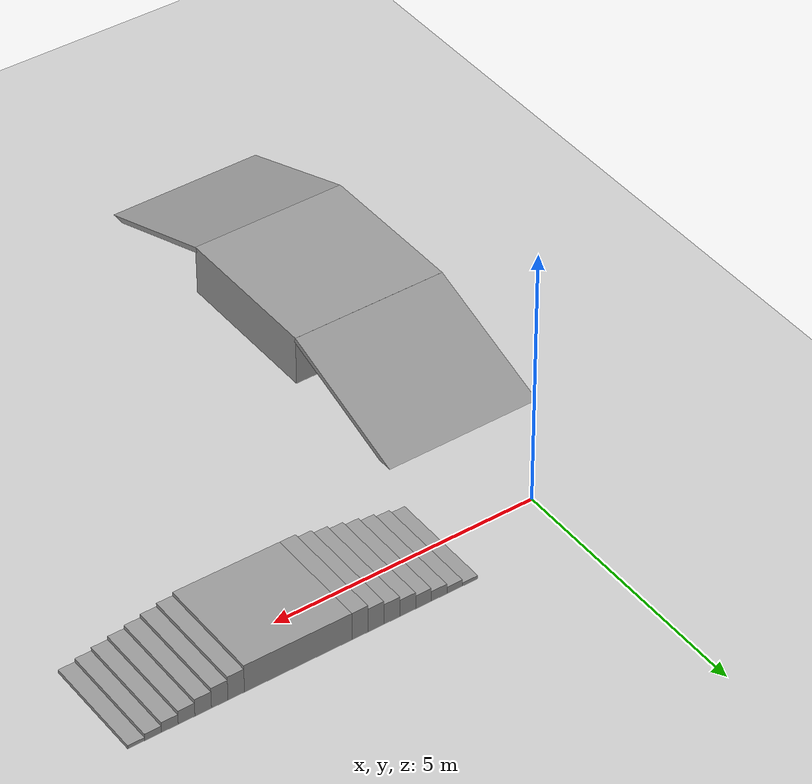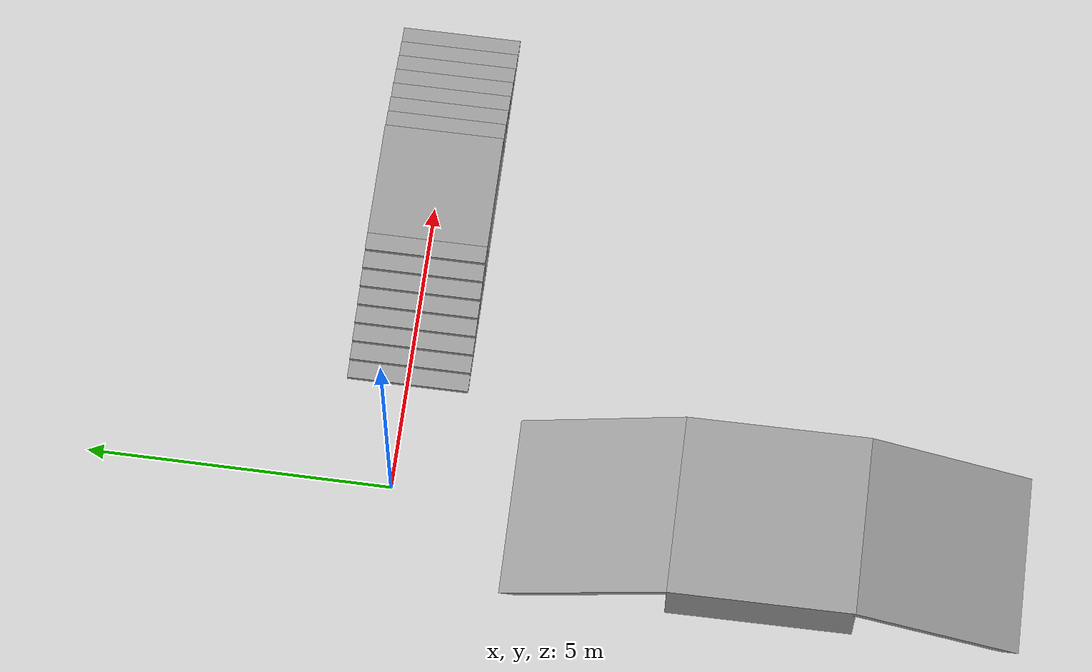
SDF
<sdf version="1.7">
 <world name="default">
  <model name="ground_plane">
   <static>1</static>
   <link name="link">
    <collision name="collision">
     <geometry><plane><normal>0 0 1</normal><size>100 100</size></plane></geometry>
     <surface><friction><ode><mu>100</mu><mu2>50</mu2></ode></friction></surface>
    </collision>
    <visual name="visual">
     <cast_shadows>0</cast_shadows>
     <geometry><plane><normal>0 0 1</normal><size>100 100</size></plane></geometry>
     <material>
      <script><uri>file://media/materials/scripts/gazebo.material</uri><name>Gazebo/Grey</name></script>
     </material>
    </visual>
   </link>
  </model>
  <model name="7cm">
   <link name="link_0">
    <inertial>
     <mass>1</mass>
     <inertia>
      <ixx>0.166667</ixx>
      <ixy>0</ixy>
      <ixz>0</ixz>
      <iyy>0.166667</iyy>
      <iyz>0</iyz>
      <izz>0.166667</izz>
     </inertia>
    </inertial>
    <pose>-3.04688 0 -0.1225 0 -0 0</pose>
    <kinematic>1</kinematic>
    <visual name="visual">
     <geometry><box><size>0.3 2 0.07</size></box></geometry>
     <material>
      <lighting>1</lighting>
      <script><uri>file://media/materials/scripts/gazebo.material</uri><name>Gazebo/Grey</name></script>
      <shader type="pixel"><normal_map>__default__</normal_map></shader>
      <ambient>0.3 0.3 0.3 1</ambient>
      <diffuse>0.7 0.7 0.7 1</diffuse>
      <specular>0.01 0.01 0.01 1</specular>
      <emissive>0 0 0 1</emissive>
     </material>
    </visual>
    <collision name="collision">
     <geometry><box><size>0.3 2 0.07</size></box></geometry>
     <surface>
      <friction>
       <ode><mu>1</mu><mu2>1</mu2><fdir1>0 0 0</fdir1><slip1>0</slip1><slip2>0</slip2></ode>
       <torsional>
        <coefficient>1</coefficient>
        <patch_radius>0</patch_radius>
        <surface_radius>0</surface_radius>
        <use_patch_radius>1</use_patch_radius>
        <ode><slip>0</slip></ode>
       </torsional>
      </friction>
      <bounce><restitution_coefficient>0</restitution_coefficient><threshold>1e+06</threshold></bounce>
      <contact>
       <collide_without_contact>0</collide_without_contact>
       <collide_without_contact_bitmask>1</collide_without_contact_bitmask>
       <collide_bitmask>1</collide_bitmask>
       <ode>
        <soft_cfm>0</soft_cfm>
        <soft_erp>0.2</soft_erp>
        <kp>1e+13</kp>
        <kd>1</kd>
        <max_vel>0.01</max_vel>
        <min_depth>0</min_depth>
       </ode>
       <bullet>
        <split_impulse>1</split_impulse>
        <split_impulse_penetration_threshold>-0.01</split_impulse_penetration_threshold>
        <soft_cfm>0</soft_cfm>
        <soft_erp>0.2</soft_erp>
        <kp>1e+13</kp>
        <kd>1</kd>
       </bullet>
      </contact>
     </surface>
    </collision>
   </link>
   <link name="link_0_clone">
    <inertial>
     <mass>1</mass>
     <inertia>
      <ixx>0.166667</ixx>
      <ixy>0</ixy>
      <ixz>0</ixz>
      <iyy>0.166667</iyy>
      <iyz>0</iyz>
      <izz>0.166667</izz>
     </inertia>
    </inertial>
    <pose>-2.74688 0 -0.0875 0 -0 0</pose>
    <kinematic>1</kinematic>
    <visual name="visual">
     <geometry><box><size>0.3 2 0.14</size></box></geometry>
     <material>
      <lighting>1</lighting>
      <script><uri>file://media/materials/scripts/gazebo.material</uri><name>Gazebo/Grey</name></script>
      <shader type="pixel"><normal_map>__default__</normal_map></shader>
      <ambient>0.3 0.3 0.3 1</ambient>
      <diffuse>0.7 0.7 0.7 1</diffuse>
      <specular>0.01 0.01 0.01 1</specular>
      <emissive>0 0 0 1</emissive>
     </material>
    </visual>
    <collision name="collision">
     <geometry><box><size>0.3 2 0.14</size></box></geometry>
     <surface>
      <friction>
       <ode><mu>1</mu><mu2>1</mu2><fdir1>0 0 0</fdir1><slip1>0</slip1><slip2>0</slip2></ode>
       <torsional>
        <coefficient>1</coefficient>
        <patch_radius>0</patch_radius>
        <surface_radius>0</surface_radius>
        <use_patch_radius>1</use_patch_radius>
        <ode><slip>0</slip></ode>
       </torsional>
      </friction>
      <bounce><restitution_coefficient>0</restitution_coefficient><threshold>1e+06</threshold></bounce>
      <contact>
       <collide_without_contact>0</collide_without_contact>
       <collide_without_contact_bitmask>1</collide_without_contact_bitmask>
       <collide_bitmask>1</collide_bitmask>
       <ode>
        <soft_cfm>0</soft_cfm>
        <soft_erp>0.2</soft_erp>
        <kp>1e+13</kp>
        <kd>1</kd>
        <max_vel>0.01</max_vel>
        <min_depth>0</min_depth>
       </ode>
       <bullet>
        <split_impulse>1</split_impulse>
        <split_impulse_penetration_threshold>-0.01</split_impulse_penetration_threshold>
        <soft_cfm>0</soft_cfm>
        <soft_erp>0.2</soft_erp>
        <kp>1e+13</kp>
        <kd>1</kd>
       </bullet>
      </contact>
     </surface>
    </collision>
   </link>
   <link name="link_0_clone_0">
    <inertial>
     <mass>1</mass>
     <inertia>
      <ixx>0.166667</ixx>
      <ixy>0</ixy>
      <ixz>0</ixz>
      <iyy>0.166667</iyy>
      <iyz>0</iyz>
      <izz>0.166667</izz>
     </inertia>
    </inertial>
    <pose>3.15313 0 -0.1225 0 -0 0</pose>
    <kinematic>1</kinematic>
    <visual name="visual">
     <geometry><box><size>0.3 2 0.07</size></box></geometry>
     <material>
      <lighting>1</lighting>
      <script><uri>file://media/materials/scripts/gazebo.material</uri><name>Gazebo/Grey</name></script>
      <shader type="pixel"><normal_map>__default__</normal_map></shader>
      <ambient>0.3 0.3 0.3 1</ambient>
      <diffuse>0.7 0.7 0.7 1</diffuse>
      <specular>0.01 0.01 0.01 1</specular>
      <emissive>0 0 0 1</emissive>
     </material>
    </visual>
    <collision name="collision">
     <geometry><box><size>0.3 2 0.07</size></box></geometry>
     <surface>
      <friction>
       <ode><mu>1</mu><mu2>1</mu2><fdir1>0 0 0</fdir1><slip1>0</slip1><slip2>0</slip2></ode>
       <torsional>
        <coefficient>1</coefficient>
        <patch_radius>0</patch_radius>
        <surface_radius>0</surface_radius>
        <use_patch_radius>1</use_patch_radius>
        <ode><slip>0</slip></ode>
       </torsional>
      </friction>
      <bounce><restitution_coefficient>0</restitution_coefficient><threshold>1e+06</threshold></bounce>
      <contact>
       <collide_without_contact>0</collide_without_contact>
       <collide_without_contact_bitmask>1</collide_without_contact_bitmask>
       <collide_bitmask>1</collide_bitmask>
       <ode>
        <soft_cfm>0</soft_cfm>
        <soft_erp>0.2</soft_erp>
        <kp>1e+13</kp>
        <kd>1</kd>
        <max_vel>0.01</max_vel>
        <min_depth>0</min_depth>
       </ode>
       <bullet>
        <split_impulse>1</split_impulse>
        <split_impulse_penetration_threshold>-0.01</split_impulse_penetration_threshold>
        <soft_cfm>0</soft_cfm>
        <soft_erp>0.2</soft_erp>
        <kp>1e+13</kp>
        <kd>1</kd>
       </bullet>
      </contact>
     </surface>
    </collision>
   </link>
   <link name="link_0_clone_clone">
    <inertial>
     <mass>1</mass>
     <inertia>
      <ixx>0.166667</ixx>
      <ixy>0</ixy>
      <ixz>0</ixz>
      <iyy>0.166667</iyy>
      <iyz>0</iyz>
      <izz>0.166667</izz>
     </inertia>
    </inertial>
    <pose>-2.44687 0 -0.0525 0 -0 0</pose>
    <kinematic>1</kinematic>
    <visual name="visual">
     <geometry><box><size>0.3 2 0.21</size></box></geometry>
     <material>
      <lighting>1</lighting>
      <script><uri>file://media/materials/scripts/gazebo.material</uri><name>Gazebo/Grey</name></script>
      <shader type="pixel"><normal_map>__default__</normal_map></shader>
      <ambient>0.3 0.3 0.3 1</ambient>
      <diffuse>0.7 0.7 0.7 1</diffuse>
      <specular>0.01 0.01 0.01 1</specular>
      <emissive>0 0 0 1</emissive>
     </material>
    </visual>
    <collision name="collision">
     <geometry><box><size>0.3 2 0.21</size></box></geometry>
     <surface>
      <friction>
       <ode><mu>1</mu><mu2>1</mu2><fdir1>0 0 0</fdir1><slip1>0</slip1><slip2>0</slip2></ode>
       <torsional>
        <coefficient>1</coefficient>
        <patch_radius>0</patch_radius>
        <surface_radius>0</surface_radius>
        <use_patch_radius>1</use_patch_radius>
        <ode><slip>0</slip></ode>
       </torsional>
      </friction>
      <bounce><restitution_coefficient>0</restitution_coefficient><threshold>1e+06</threshold></bounce>
      <contact>
       <collide_without_contact>0</collide_without_contact>
       <collide_without_contact_bitmask>1</collide_without_contact_bitmask>
       <collide_bitmask>1</collide_bitmask>
       <ode>
        <soft_cfm>0</soft_cfm>
        <soft_erp>0.2</soft_erp>
        <kp>1e+13</kp>
        <kd>1</kd>
        <max_vel>0.01</max_vel>
        <min_depth>0</min_depth>
       </ode>
       <bullet>
        <split_impulse>1</split_impulse>
        <split_impulse_penetration_threshold>-0.01</split_impulse_penetration_threshold>
        <soft_cfm>0</soft_cfm>
        <soft_erp>0.2</soft_erp>
        <kp>1e+13</kp>
        <kd>1</kd>
       </bullet>
      </contact>
     </surface>
    </collision>
   </link>
   <link name="link_0_clone_clone_0">
    <inertial>
     <mass>1</mass>
     <inertia>
      <ixx>0.166667</ixx>
      <ixy>0</ixy>
      <ixz>0</ixz>
      <iyy>0.166667</iyy>
      <iyz>0</iyz>
      <izz>0.166667</izz>
     </inertia>
    </inertial>
    <pose>2.85312 0 -0.0875 0 -0 0</pose>
    <kinematic>1</kinematic>
    <visual name="visual">
     <geometry><box><size>0.3 2 0.14</size></box></geometry>
     <material>
      <lighting>1</lighting>
      <script><uri>file://media/materials/scripts/gazebo.material</uri><name>Gazebo/Grey</name></script>
      <shader type="pixel"><normal_map>__default__</normal_map></shader>
      <ambient>0.3 0.3 0.3 1</ambient>
      <diffuse>0.7 0.7 0.7 1</diffuse>
      <specular>0.01 0.01 0.01 1</specular>
      <emissive>0 0 0 1</emissive>
     </material>
    </visual>
    <collision name="collision">
     <geometry><box><size>0.3 2 0.14</size></box></geometry>
     <surface>
      <friction>
       <ode><mu>1</mu><mu2>1</mu2><fdir1>0 0 0</fdir1><slip1>0</slip1><slip2>0</slip2></ode>
       <torsional>
        <coefficient>1</coefficient>
        <patch_radius>0</patch_radius>
        <surface_radius>0</surface_radius>
        <use_patch_radius>1</use_patch_radius>
        <ode><slip>0</slip></ode>
       </torsional>
      </friction>
      <bounce><restitution_coefficient>0</restitution_coefficient><threshold>1e+06</threshold></bounce>
      <contact>
       <collide_without_contact>0</collide_without_contact>
       <collide_without_contact_bitmask>1</collide_without_contact_bitmask>
       <collide_bitmask>1</collide_bitmask>
       <ode>
        <soft_cfm>0</soft_cfm>
        <soft_erp>0.2</soft_erp>
        <kp>1e+13</kp>
        <kd>1</kd>
        <max_vel>0.01</max_vel>
        <min_depth>0</min_depth>
       </ode>
       <bullet>
        <split_impulse>1</split_impulse>
        <split_impulse_penetration_threshold>-0.01</split_impulse_penetration_threshold>
        <soft_cfm>0</soft_cfm>
        <soft_erp>0.2</soft_erp>
        <kp>1e+13</kp>
        <kd>1</kd>
       </bullet>
      </contact>
     </surface>
    </collision>
   </link>
   <link name="link_0_clone_clone_clone">
    <inertial>
     <mass>1</mass>
     <inertia>
      <ixx>0.166667</ixx>
      <ixy>0</ixy>
      <ixz>0</ixz>
      <iyy>0.166667</iyy>
      <iyz>0</iyz>
      <izz>0.166667</izz>
     </inertia>
    </inertial>
    <pose>-2.14688 0 -0.0175 0 -0 0</pose>
    <kinematic>1</kinematic>
    <visual name="visual">
     <geometry><box><size>0.3 2 0.28</size></box></geometry>
     <material>
      <lighting>1</lighting>
      <script><uri>file://media/materials/scripts/gazebo.material</uri><name>Gazebo/Grey</name></script>
      <shader type="pixel"><normal_map>__default__</normal_map></shader>
      <ambient>0.3 0.3 0.3 1</ambient>
      <diffuse>0.7 0.7 0.7 1</diffuse>
      <specular>0.01 0.01 0.01 1</specular>
      <emissive>0 0 0 1</emissive>
     </material>
    </visual>
    <collision name="collision">
     <geometry><box><size>0.3 2 0.28</size></box></geometry>
     <surface>
      <friction>
       <ode><mu>1</mu><mu2>1</mu2><fdir1>0 0 0</fdir1><slip1>0</slip1><slip2>0</slip2></ode>
       <torsional>
        <coefficient>1</coefficient>
        <patch_radius>0</patch_radius>
        <surface_radius>0</surface_radius>
        <use_patch_radius>1</use_patch_radius>
        <ode><slip>0</slip></ode>
       </torsional>
      </friction>
      <bounce><restitution_coefficient>0</restitution_coefficient><threshold>1e+06</threshold></bounce>
      <contact>
       <collide_without_contact>0</collide_without_contact>
       <collide_without_contact_bitmask>1</collide_without_contact_bitmask>
       <collide_bitmask>1</collide_bitmask>
       <ode>
        <soft_cfm>0</soft_cfm>
        <soft_erp>0.2</soft_erp>
        <kp>1e+13</kp>
        <kd>1</kd>
        <max_vel>0.01</max_vel>
        <min_depth>0</min_depth>
       </ode>
       <bullet>
        <split_impulse>1</split_impulse>
        <split_impulse_penetration_threshold>-0.01</split_impulse_penetration_threshold>
        <soft_cfm>0</soft_cfm>
        <soft_erp>0.2</soft_erp>
        <kp>1e+13</kp>
        <kd>1</kd>
       </bullet>
      </contact>
     </surface>
    </collision>
   </link>
   <link name="link_0_clone_clone_clone_0">
    <inertial>
     <mass>1</mass>
     <inertia>
      <ixx>0.166667</ixx>
      <ixy>0</ixy>
      <ixz>0</ixz>
      <iyy>0.166667</iyy>
      <iyz>0</iyz>
      <izz>0.166667</izz>
     </inertia>
    </inertial>
    <pose>2.55313 0 -0.0525 0 -0 0</pose>
    <kinematic>1</kinematic>
    <visual name="visual">
     <geometry><box><size>0.3 2 0.21</size></box></geometry>
     <material>
      <lighting>1</lighting>
      <script><uri>file://media/materials/scripts/gazebo.material</uri><name>Gazebo/Grey</name></script>
      <shader type="pixel"><normal_map>__default__</normal_map></shader>
      <ambient>0.3 0.3 0.3 1</ambient>
      <diffuse>0.7 0.7 0.7 1</diffuse>
      <specular>0.01 0.01 0.01 1</specular>
      <emissive>0 0 0 1</emissive>
     </material>
    </visual>
    <collision name="collision">
     <geometry><box><size>0.3 2 0.21</size></box></geometry>
     <surface>
      <friction>
       <ode><mu>1</mu><mu2>1</mu2><fdir1>0 0 0</fdir1><slip1>0</slip1><slip2>0</slip2></ode>
       <torsional>
        <coefficient>1</coefficient>
        <patch_radius>0</patch_radius>
        <surface_radius>0</surface_radius>
        <use_patch_radius>1</use_patch_radius>
        <ode><slip>0</slip></ode>
       </torsional>
      </friction>
      <bounce><restitution_coefficient>0</restitution_coefficient><threshold>1e+06</threshold></bounce>
      <contact>
       <collide_without_contact>0</collide_without_contact>
       <collide_without_contact_bitmask>1</collide_without_contact_bitmask>
       <collide_bitmask>1</collide_bitmask>
       <ode>
        <soft_cfm>0</soft_cfm>
        <soft_erp>0.2</soft_erp>
        <kp>1e+13</kp>
        <kd>1</kd>
        <max_vel>0.01</max_vel>
        <min_depth>0</min_depth>
       </ode>
       <bullet>
        <split_impulse>1</split_impulse>
        <split_impulse_penetration_threshold>-0.01</split_impulse_penetration_threshold>
        <soft_cfm>0</soft_cfm>
        <soft_erp>0.2</soft_erp>
        <kp>1e+13</kp>
        <kd>1</kd>
       </bullet>
      </contact>
     </surface>
    </collision>
   </link>
   <link name="link_0_clone_clone_clone_clone">
    <inertial>
     <mass>1</mass>
     <inertia>
      <ixx>0.166667</ixx>
      <ixy>0</ixy>
      <ixz>0</ixz>
      <iyy>0.166667</iyy>
      <iyz>0</iyz>
      <izz>0.166667</izz>
     </inertia>
    </inertial>
    <pose>-1.84688 0 0.0175 0 -0 0</pose>
    <kinematic>1</kinematic>
    <visual name="visual">
     <geometry><box><size>0.3 2 0.35</size></box></geometry>
     <material>
      <lighting>1</lighting>
      <script><uri>file://media/materials/scripts/gazebo.material</uri><name>Gazebo/Grey</name></script>
      <shader type="pixel"><normal_map>__default__</normal_map></shader>
      <ambient>0.3 0.3 0.3 1</ambient>
      <diffuse>0.7 0.7 0.7 1</diffuse>
      <specular>0.01 0.01 0.01 1</specular>
      <emissive>0 0 0 1</emissive>
     </material>
    </visual>
    <collision name="collision">
     <geometry><box><size>0.3 2 0.35</size></box></geometry>
     <surface>
      <friction>
       <ode><mu>1</mu><mu2>1</mu2><fdir1>0 0 0</fdir1><slip1>0</slip1><slip2>0</slip2></ode>
       <torsional>
        <coefficient>1</coefficient>
        <patch_radius>0</patch_radius>
        <surface_radius>0</surface_radius>
        <use_patch_radius>1</use_patch_radius>
        <ode><slip>0</slip></ode>
       </torsional>
      </friction>
      <bounce><restitution_coefficient>0</restitution_coefficient><threshold>1e+06</threshold></bounce>
      <contact>
       <collide_without_contact>0</collide_without_contact>
       <collide_without_contact_bitmask>1</collide_without_contact_bitmask>
       <collide_bitmask>1</collide_bitmask>
       <ode>
        <soft_cfm>0</soft_cfm>
        <soft_erp>0.2</soft_erp>
        <kp>1e+13</kp>
        <kd>1</kd>
        <max_vel>0.01</max_vel>
        <min_depth>0</min_depth>
       </ode>
       <bullet>
        <split_impulse>1</split_impulse>
        <split_impulse_penetration_threshold>-0.01</split_impulse_penetration_threshold>
        <soft_cfm>0</soft_cfm>
        <soft_erp>0.2</soft_erp>
        <kp>1e+13</kp>
        <kd>1</kd>
       </bullet>
      </contact>
     </surface>
    </collision>
   </link>
   <link name="link_0_clone_clone_clone_clone_0">
    <inertial>
     <mass>1</mass>
     <inertia>
      <ixx>0.166667</ixx>
      <ixy>0</ixy>
      <ixz>0</ixz>
      <iyy>0.166667</iyy>
      <iyz>0</iyz>
      <izz>0.166667</izz>
     </inertia>
    </inertial>
    <pose>2.25312 0 -0.0175 0 -0 0</pose>
    <kinematic>1</kinematic>
    <visual name="visual">
     <geometry><box><size>0.3 2 0.28</size></box></geometry>
     <material>
      <lighting>1</lighting>
      <script><uri>file://media/materials/scripts/gazebo.material</uri><name>Gazebo/Grey</name></script>
      <shader type="pixel"><normal_map>__default__</normal_map></shader>
      <ambient>0.3 0.3 0.3 1</ambient>
      <diffuse>0.7 0.7 0.7 1</diffuse>
      <specular>0.01 0.01 0.01 1</specular>
      <emissive>0 0 0 1</emissive>
     </material>
    </visual>
    <collision name="collision">
     <geometry><box><size>0.3 2 0.28</size></box></geometry>
     <surface>
      <friction>
       <ode><mu>1</mu><mu2>1</mu2><fdir1>0 0 0</fdir1><slip1>0</slip1><slip2>0</slip2></ode>
       <torsional>
        <coefficient>1</coefficient>
        <patch_radius>0</patch_radius>
        <surface_radius>0</surface_radius>
        <use_patch_radius>1</use_patch_radius>
        <ode><slip>0</slip></ode>
       </torsional>
      </friction>
      <bounce><restitution_coefficient>0</restitution_coefficient><threshold>1e+06</threshold></bounce>
      <contact>
       <collide_without_contact>0</collide_without_contact>
       <collide_without_contact_bitmask>1</collide_without_contact_bitmask>
       <collide_bitmask>1</collide_bitmask>
       <ode>
        <soft_cfm>0</soft_cfm>
        <soft_erp>0.2</soft_erp>
        <kp>1e+13</kp>
        <kd>1</kd>
        <max_vel>0.01</max_vel>
        <min_depth>0</min_depth>
       </ode>
       <bullet>
        <split_impulse>1</split_impulse>
        <split_impulse_penetration_threshold>-0.01</split_impulse_penetration_threshold>
        <soft_cfm>0</soft_cfm>
        <soft_erp>0.2</soft_erp>
        <kp>1e+13</kp>
        <kd>1</kd>
       </bullet>
      </contact>
     </surface>
    </collision>
   </link>
   <link name="link_0_clone_clone_clone_clone_clone">
    <inertial>
     <mass>1</mass>
     <inertia>
      <ixx>0.166667</ixx>
      <ixy>0</ixy>
      <ixz>0</ixz>
      <iyy>0.166667</iyy>
      <iyz>0</iyz>
      <izz>0.166667</izz>
     </inertia>
    </inertial>
    <pose>-1.54688 0 0.0525 0 -0 0</pose>
    <kinematic>1</kinematic>
    <visual name="visual">
     <geometry><box><size>0.3 2 0.42</size></box></geometry>
     <material>
      <lighting>1</lighting>
      <script><uri>file://media/materials/scripts/gazebo.material</uri><name>Gazebo/Grey</name></script>
      <shader type="pixel"><normal_map>__default__</normal_map></shader>
      <ambient>0.3 0.3 0.3 1</ambient>
      <diffuse>0.7 0.7 0.7 1</diffuse>
      <specular>0.01 0.01 0.01 1</specular>
      <emissive>0 0 0 1</emissive>
     </material>
    </visual>
    <collision name="collision">
     <geometry><box><size>0.3 2 0.42</size></box></geometry>
     <surface>
      <friction>
       <ode><mu>1</mu><mu2>1</mu2><fdir1>0 0 0</fdir1><slip1>0</slip1><slip2>0</slip2></ode>
       <torsional>
        <coefficient>1</coefficient>
        <patch_radius>0</patch_radius>
        <surface_radius>0</surface_radius>
        <use_patch_radius>1</use_patch_radius>
        <ode><slip>0</slip></ode>
       </torsional>
      </friction>
      <bounce><restitution_coefficient>0</restitution_coefficient><threshold>1e+06</threshold></bounce>
      <contact>
       <collide_without_contact>0</collide_without_contact>
       <collide_without_contact_bitmask>1</collide_without_contact_bitmask>
       <collide_bitmask>1</collide_bitmask>
       <ode>
        <soft_cfm>0</soft_cfm>
        <soft_erp>0.2</soft_erp>
        <kp>1e+13</kp>
        <kd>1</kd>
        <max_vel>0.01</max_vel>
        <min_depth>0</min_depth>
       </ode>
       <bullet>
        <split_impulse>1</split_impulse>
        <split_impulse_penetration_threshold>-0.01</split_impulse_penetration_threshold>
        <soft_cfm>0</soft_cfm>
        <soft_erp>0.2</soft_erp>
        <kp>1e+13</kp>
        <kd>1</kd>
       </bullet>
      </contact>
     </surface>
    </collision>
   </link>
   <link name="link_0_clone_clone_clone_clone_clone_0">
    <inertial>
     <mass>1</mass>
     <inertia>
      <ixx>0.166667</ixx>
      <ixy>0</ixy>
      <ixz>0</ixz>
      <iyy>0.166667</iyy>
      <iyz>0</iyz>
      <izz>0.166667</izz>
     </inertia>
    </inertial>
    <pose>1.95312 0 0.0175 0 -0 0</pose>
    <kinematic>1</kinematic>
    <visual name="visual">
     <geometry><box><size>0.3 2 0.35</size></box></geometry>
     <material>
      <lighting>1</lighting>
      <script><uri>file://media/materials/scripts/gazebo.material</uri><name>Gazebo/Grey</name></script>
      <shader type="pixel"><normal_map>__default__</normal_map></shader>
      <ambient>0.3 0.3 0.3 1</ambient>
      <diffuse>0.7 0.7 0.7 1</diffuse>
      <specular>0.01 0.01 0.01 1</specular>
      <emissive>0 0 0 1</emissive>
     </material>
    </visual>
    <collision name="collision">
     <geometry><box><size>0.3 2 0.35</size></box></geometry>
     <surface>
      <friction>
       <ode><mu>1</mu><mu2>1</mu2><fdir1>0 0 0</fdir1><slip1>0</slip1><slip2>0</slip2></ode>
       <torsional>
        <coefficient>1</coefficient>
        <patch_radius>0</patch_radius>
        <surface_radius>0</surface_radius>
        <use_patch_radius>1</use_patch_radius>
        <ode><slip>0</slip></ode>
       </torsional>
      </friction>
      <bounce><restitution_coefficient>0</restitution_coefficient><threshold>1e+06</threshold></bounce>
      <contact>
       <collide_without_contact>0</collide_without_contact>
       <collide_without_contact_bitmask>1</collide_without_contact_bitmask>
       <collide_bitmask>1</collide_bitmask>
       <ode>
        <soft_cfm>0</soft_cfm>
        <soft_erp>0.2</soft_erp>
        <kp>1e+13</kp>
        <kd>1</kd>
        <max_vel>0.01</max_vel>
        <min_depth>0</min_depth>
       </ode>
       <bullet>
        <split_impulse>1</split_impulse>
        <split_impulse_penetration_threshold>-0.01</split_impulse_penetration_threshold>
        <soft_cfm>0</soft_cfm>
        <soft_erp>0.2</soft_erp>
        <kp>1e+13</kp>
        <kd>1</kd>
       </bullet>
      </contact>
     </surface>
    </collision>
   </link>
   <link name="link_0_clone_clone_clone_clone_clone_clone">
    <inertial>
     <mass>1</mass>
     <inertia>
      <ixx>0.166667</ixx>
      <ixy>0</ixy>
      <ixz>0</ixz>
      <iyy>0.166667</iyy>
      <iyz>0</iyz>
      <izz>0.166667</izz>
     </inertia>
    </inertial>
    <pose>-1.24687 0 0.0875 0 -0 0</pose>
    <kinematic>1</kinematic>
    <visual name="visual">
     <geometry><box><size>0.3 2 0.49</size></box></geometry>
     <material>
      <lighting>1</lighting>
      <script><uri>file://media/materials/scripts/gazebo.material</uri><name>Gazebo/Grey</name></script>
      <shader type="pixel"><normal_map>__default__</normal_map></shader>
      <ambient>0.3 0.3 0.3 1</ambient>
      <diffuse>0.7 0.7 0.7 1</diffuse>
      <specular>0.01 0.01 0.01 1</specular>
      <emissive>0 0 0 1</emissive>
     </material>
    </visual>
    <collision name="collision">
     <geometry><box><size>0.3 2 0.49</size></box></geometry>
     <surface>
      <friction>
       <ode><mu>1</mu><mu2>1</mu2><fdir1>0 0 0</fdir1><slip1>0</slip1><slip2>0</slip2></ode>
       <torsional>
        <coefficient>1</coefficient>
        <patch_radius>0</patch_radius>
        <surface_radius>0</surface_radius>
        <use_patch_radius>1</use_patch_radius>
        <ode><slip>0</slip></ode>
       </torsional>
      </friction>
      <bounce><restitution_coefficient>0</restitution_coefficient><threshold>1e+06</threshold></bounce>
      <contact>
       <collide_without_contact>0</collide_without_contact>
       <collide_without_contact_bitmask>1</collide_without_contact_bitmask>
       <collide_bitmask>1</collide_bitmask>
       <ode>
        <soft_cfm>0</soft_cfm>
        <soft_erp>0.2</soft_erp>
        <kp>1e+13</kp>
        <kd>1</kd>
        <max_vel>0.01</max_vel>
        <min_depth>0</min_depth>
       </ode>
       <bullet>
        <split_impulse>1</split_impulse>
        <split_impulse_penetration_threshold>-0.01</split_impulse_penetration_threshold>
        <soft_cfm>0</soft_cfm>
        <soft_erp>0.2</soft_erp>
        <kp>1e+13</kp>
        <kd>1</kd>
       </bullet>
      </contact>
     </surface>
    </collision>
   </link>
   <link name="link_0_clone_clone_clone_clone_clone_clone_0">
    <inertial>
     <mass>1</mass>
     <inertia>
      <ixx>0.166667</ixx>
      <ixy>0</ixy>
      <ixz>0</ixz>
      <iyy>0.166667</iyy>
      <iyz>0</iyz>
      <izz>0.166667</izz>
     </inertia>
    </inertial>
    <pose>1.65312 0 0.0525 0 -0 0</pose>
    <kinematic>1</kinematic>
    <visual name="visual">
     <geometry><box><size>0.3 2 0.42</size></box></geometry>
     <material>
      <lighting>1</lighting>
      <script><uri>file://media/materials/scripts/gazebo.material</uri><name>Gazebo/Grey</name></script>
      <shader type="pixel"><normal_map>__default__</normal_map></shader>
      <ambient>0.3 0.3 0.3 1</ambient>
      <diffuse>0.7 0.7 0.7 1</diffuse>
      <specular>0.01 0.01 0.01 1</specular>
      <emissive>0 0 0 1</emissive>
     </material>
    </visual>
    <collision name="collision">
     <geometry><box><size>0.3 2 0.42</size></box></geometry>
     <surface>
      <friction>
       <ode><mu>1</mu><mu2>1</mu2><fdir1>0 0 0</fdir1><slip1>0</slip1><slip2>0</slip2></ode>
       <torsional>
        <coefficient>1</coefficient>
        <patch_radius>0</patch_radius>
        <surface_radius>0</surface_radius>
        <use_patch_radius>1</use_patch_radius>
        <ode><slip>0</slip></ode>
       </torsional>
      </friction>
      <bounce><restitution_coefficient>0</restitution_coefficient><threshold>1e+06</threshold></bounce>
      <contact>
       <collide_without_contact>0</collide_without_contact>
       <collide_without_contact_bitmask>1</collide_without_contact_bitmask>
       <collide_bitmask>1</collide_bitmask>
       <ode>
        <soft_cfm>0</soft_cfm>
        <soft_erp>0.2</soft_erp>
        <kp>1e+13</kp>
        <kd>1</kd>
        <max_vel>0.01</max_vel>
        <min_depth>0</min_depth>
       </ode>
       <bullet>
        <split_impulse>1</split_impulse>
        <split_impulse_penetration_threshold>-0.01</split_impulse_penetration_threshold>
        <soft_cfm>0</soft_cfm>
        <soft_erp>0.2</soft_erp>
        <kp>1e+13</kp>
        <kd>1</kd>
       </bullet>
      </contact>
     </surface>
    </collision>
   </link>
   <link name="link_0_clone_clone_clone_clone_clone_clone_clone">
    <inertial>
     <mass>1</mass>
     <inertia>
      <ixx>0.166667</ixx>
      <ixy>0</ixy>
      <ixz>0</ixz>
      <iyy>0.166667</iyy>
      <iyz>0</iyz>
      <izz>0.166667</izz>
     </inertia>
    </inertial>
    <pose>-0.946875 0 0.1225 0 -0 0</pose>
    <kinematic>1</kinematic>
    <visual name="visual">
     <geometry><box><size>0.3 2 0.56</size></box></geometry>
     <material>
      <lighting>1</lighting>
      <script><uri>file://media/materials/scripts/gazebo.material</uri><name>Gazebo/Grey</name></script>
      <shader type="pixel"><normal_map>__default__</normal_map></shader>
      <ambient>0.3 0.3 0.3 1</ambient>
      <diffuse>0.7 0.7 0.7 1</diffuse>
      <specular>0.01 0.01 0.01 1</specular>
      <emissive>0 0 0 1</emissive>
     </material>
    </visual>
    <collision name="collision">
     <geometry><box><size>0.3 2 0.56</size></box></geometry>
     <surface>
      <friction>
       <ode><mu>1</mu><mu2>1</mu2><fdir1>0 0 0</fdir1><slip1>0</slip1><slip2>0</slip2></ode>
       <torsional>
        <coefficient>1</coefficient>
        <patch_radius>0</patch_radius>
        <surface_radius>0</surface_radius>
        <use_patch_radius>1</use_patch_radius>
        <ode><slip>0</slip></ode>
       </torsional>
      </friction>
      <bounce><restitution_coefficient>0</restitution_coefficient><threshold>1e+06</threshold></bounce>
      <contact>
       <collide_without_contact>0</collide_without_contact>
       <collide_without_contact_bitmask>1</collide_without_contact_bitmask>
       <collide_bitmask>1</collide_bitmask>
       <ode>
        <soft_cfm>0</soft_cfm>
        <soft_erp>0.2</soft_erp>
        <kp>1e+13</kp>
        <kd>1</kd>
        <max_vel>0.01</max_vel>
        <min_depth>0</min_depth>
       </ode>
       <bullet>
        <split_impulse>1</split_impulse>
        <split_impulse_penetration_threshold>-0.01</split_impulse_penetration_threshold>
        <soft_cfm>0</soft_cfm>
        <soft_erp>0.2</soft_erp>
        <kp>1e+13</kp>
        <kd>1</kd>
       </bullet>
      </contact>
     </surface>
    </collision>
   </link>
   <link name="link_0_clone_clone_clone_clone_clone_clone_clone_0">
    <inertial>
     <mass>1</mass>
     <inertia>
      <ixx>0.166667</ixx>
      <ixy>0</ixy>
      <ixz>0</ixz>
      <iyy>0.166667</iyy>
      <iyz>0</iyz>
      <izz>0.166667</izz>
     </inertia>
    </inertial>
    <pose>1.35312 0 0.0875 0 -0 0</pose>
    <kinematic>1</kinematic>
    <visual name="visual">
     <geometry><box><size>0.3 2 0.49</size></box></geometry>
     <material>
      <lighting>1</lighting>
      <script><uri>file://media/materials/scripts/gazebo.material</uri><name>Gazebo/Grey</name></script>
      <shader type="pixel"><normal_map>__default__</normal_map></shader>
      <ambient>0.3 0.3 0.3 1</ambient>
      <diffuse>0.7 0.7 0.7 1</diffuse>
      <specular>0.01 0.01 0.01 1</specular>
      <emissive>0 0 0 1</emissive>
     </material>
    </visual>
    <collision name="collision">
     <geometry><box><size>0.3 2 0.49</size></box></geometry>
     <surface>
      <friction>
       <ode><mu>1</mu><mu2>1</mu2><fdir1>0 0 0</fdir1><slip1>0</slip1><slip2>0</slip2></ode>
       <torsional>
        <coefficient>1</coefficient>
        <patch_radius>0</patch_radius>
        <surface_radius>0</surface_radius>
        <use_patch_radius>1</use_patch_radius>
        <ode><slip>0</slip></ode>
       </torsional>
      </friction>
      <bounce><restitution_coefficient>0</restitution_coefficient><threshold>1e+06</threshold></bounce>
      <contact>
       <collide_without_contact>0</collide_without_contact>
       <collide_without_contact_bitmask>1</collide_without_contact_bitmask>
       <collide_bitmask>1</collide_bitmask>
       <ode>
        <soft_cfm>0</soft_cfm>
        <soft_erp>0.2</soft_erp>
        <kp>1e+13</kp>
        <kd>1</kd>
        <max_vel>0.01</max_vel>
        <min_depth>0</min_depth>
       </ode>
       <bullet>
        <split_impulse>1</split_impulse>
        <split_impulse_penetration_threshold>-0.01</split_impulse_penetration_threshold>
        <soft_cfm>0</soft_cfm>
        <soft_erp>0.2</soft_erp>
        <kp>1e+13</kp>
        <kd>1</kd>
       </bullet>
      </contact>
     </surface>
    </collision>
   </link>
   <link name="link_0_clone_clone_clone_clone_clone_clone_clone_clone">
    <inertial>
     <mass>1</mass>
     <inertia>
      <ixx>0.166667</ixx>
      <ixy>0</ixy>
      <ixz>0</ixz>
      <iyy>0.166667</iyy>
      <iyz>0</iyz>
      <izz>0.166667</izz>
     </inertia>
    </inertial>
    <pose>0.203125 0 0.1225 0 -0 0</pose>
    <kinematic>1</kinematic>
    <visual name="visual">
     <geometry><box><size>2 2 0.56</size></box></geometry>
     <material>
      <lighting>1</lighting>
      <script><uri>file://media/materials/scripts/gazebo.material</uri><name>Gazebo/Grey</name></script>
      <shader type="pixel"><normal_map>__default__</normal_map></shader>
      <ambient>0.3 0.3 0.3 1</ambient>
      <diffuse>0.7 0.7 0.7 1</diffuse>
      <specular>0.01 0.01 0.01 1</specular>
      <emissive>0 0 0 1</emissive>
     </material>
    </visual>
    <collision name="collision">
     <geometry><box><size>2 2 0.56</size></box></geometry>
     <surface>
      <friction>
       <ode><mu>1</mu><mu2>1</mu2><fdir1>0 0 0</fdir1><slip1>0</slip1><slip2>0</slip2></ode>
       <torsional>
        <coefficient>1</coefficient>
        <patch_radius>0</patch_radius>
        <surface_radius>0</surface_radius>
        <use_patch_radius>1</use_patch_radius>
        <ode><slip>0</slip></ode>
       </torsional>
      </friction>
      <bounce><restitution_coefficient>0</restitution_coefficient><threshold>1e+06</threshold></bounce>
      <contact>
       <collide_without_contact>0</collide_without_contact>
       <collide_without_contact_bitmask>1</collide_without_contact_bitmask>
       <collide_bitmask>1</collide_bitmask>
       <ode>
        <soft_cfm>0</soft_cfm>
        <soft_erp>0.2</soft_erp>
        <kp>1e+13</kp>
        <kd>1</kd>
        <max_vel>0.01</max_vel>
        <min_depth>0</min_depth>
       </ode>
       <bullet>
        <split_impulse>1</split_impulse>
        <split_impulse_penetration_threshold>-0.01</split_impulse_penetration_threshold>
        <soft_cfm>0</soft_cfm>
        <soft_erp>0.2</soft_erp>
        <kp>1e+13</kp>
        <kd>1</kd>
       </bullet>
      </contact>
     </surface>
    </collision>
   </link>
   <static>0</static>
   <pose>5 0 0.14 0 -0 0</pose>
  </model>
  <model name="20degree">
   <link name="link_0">
    <inertial>
     <mass>1</mass>
     <inertia>
      <ixx>0.166667</ixx>
      <ixy>0</ixy>
      <ixz>0</ixz>
      <iyy>0.166667</iyy>
      <iyz>0</iyz>
      <izz>0.166667</izz>
     </inertia>
    </inertial>
    <pose>-2e-06 0 0.4 0 -0.34904 0</pose>
    <kinematic>1</kinematic>
    <visual name="visual">
     <geometry><box><size>3 3 0.1</size></box></geometry>
     <material>
      <lighting>1</lighting>
      <script><uri>file://media/materials/scripts/gazebo.material</uri><name>Gazebo/Grey</name></script>
      <shader type="pixel"><normal_map>__default__</normal_map></shader>
      <ambient>0.3 0.3 0.3 1</ambient>
      <diffuse>0.7 0.7 0.7 1</diffuse>
      <specular>0.01 0.01 0.01 1</specular>
      <emissive>0 0 0 1</emissive>
     </material>
    </visual>
    <collision name="collision">
     <geometry><box><size>3 3 0.1</size></box></geometry>
     <surface>
      <friction>
       <ode><mu>1</mu><mu2>1</mu2><fdir1>0 0 0</fdir1><slip1>0</slip1><slip2>0</slip2></ode>
       <torsional>
        <coefficient>1</coefficient>
        <patch_radius>0</patch_radius>
        <surface_radius>0</surface_radius>
        <use_patch_radius>1</use_patch_radius>
        <ode><slip>0</slip></ode>
       </torsional>
      </friction>
      <bounce><restitution_coefficient>0</restitution_coefficient><threshold>1e+06</threshold></bounce>
      <contact>
       <collide_without_contact>0</collide_without_contact>
       <collide_without_contact_bitmask>1</collide_without_contact_bitmask>
       <collide_bitmask>1</collide_bitmask>
       <ode>
        <soft_cfm>0</soft_cfm>
        <soft_erp>0.2</soft_erp>
        <kp>1e+13</kp>
        <kd>1</kd>
        <max_vel>0.01</max_vel>
        <min_depth>0</min_depth>
       </ode>
       <bullet>
        <split_impulse>1</split_impulse>
        <split_impulse_penetration_threshold>-0.01</split_impulse_penetration_threshold>
        <soft_cfm>0</soft_cfm>
        <soft_erp>0.2</soft_erp>
        <kp>1e+13</kp>
        <kd>1</kd>
       </bullet>
      </contact>
     </surface>
    </collision>
   </link>
   <link name="link_0_clone">
    <inertial>
     <mass>1</mass>
     <inertia>
      <ixx>0.166667</ixx>
      <ixy>0</ixy>
      <ixz>0</ixz>
      <iyy>0.166667</iyy>
      <iyz>0</iyz>
      <izz>0.166667</izz>
     </inertia>
    </inertial>
    <pose>5.77 0 0.4 0 0.34904 0</pose>
    <kinematic>1</kinematic>
    <visual name="visual">
     <geometry><box><size>3 3 0.1</size></box></geometry>
     <material>
      <lighting>1</lighting>
      <script><uri>file://media/materials/scripts/gazebo.material</uri><name>Gazebo/Grey</name></script>
      <shader type="pixel"><normal_map>__default__</normal_map></shader>
      <ambient>0.3 0.3 0.3 1</ambient>
      <diffuse>0.7 0.7 0.7 1</diffuse>
      <specular>0.01 0.01 0.01 1</specular>
      <emissive>0 0 0 1</emissive>
     </material>
    </visual>
    <collision name="collision">
     <geometry><box><size>3 3 0.1</size></box></geometry>
     <surface>
      <friction>
       <ode><mu>1</mu><mu2>1</mu2><fdir1>0 0 0</fdir1><slip1>0</slip1><slip2>0</slip2></ode>
       <torsional>
        <coefficient>1</coefficient>
        <patch_radius>0</patch_radius>
        <surface_radius>0</surface_radius>
        <use_patch_radius>1</use_patch_radius>
        <ode><slip>0</slip></ode>
       </torsional>
      </friction>
      <bounce><restitution_coefficient>0</restitution_coefficient><threshold>1e+06</threshold></bounce>
      <contact>
       <collide_without_contact>0</collide_without_contact>
       <collide_without_contact_bitmask>1</collide_without_contact_bitmask>
       <collide_bitmask>1</collide_bitmask>
       <ode>
        <soft_cfm>0</soft_cfm>
        <soft_erp>0.2</soft_erp>
        <kp>1e+13</kp>
        <kd>1</kd>
        <max_vel>0.01</max_vel>
        <min_depth>0</min_depth>
       </ode>
       <bullet>
        <split_impulse>1</split_impulse>
        <split_impulse_penetration_threshold>-0.01</split_impulse_penetration_threshold>
        <soft_cfm>0</soft_cfm>
        <soft_erp>0.2</soft_erp>
        <kp>1e+13</kp>
        <kd>1</kd>
       </bullet>
      </contact>
     </surface>
    </collision>
   </link>
   <link name="link_1">
    <inertial>
     <mass>1</mass>
     <inertia>
      <ixx>0.166667</ixx>
      <ixy>0</ixy>
      <ixz>0</ixz>
      <iyy>0.166667</iyy>
      <iyz>0</iyz>
      <izz>0.166667</izz>
     </inertia>
    </inertial>
    <pose>2.88 0 0.46 0 -0 0</pose>
    <kinematic>1</kinematic>
    <visual name="visual">
     <geometry><box><size>3 3 1</size></box></geometry>
     <material>
      <lighting>1</lighting>
      <script><uri>file://media/materials/scripts/gazebo.material</uri><name>Gazebo/Grey</name></script>
      <shader type="pixel"><normal_map>__default__</normal_map></shader>
      <ambient>0.3 0.3 0.3 1</ambient>
      <diffuse>0.7 0.7 0.7 1</diffuse>
      <specular>0.01 0.01 0.01 1</specular>
      <emissive>0 0 0 1</emissive>
     </material>
    </visual>
    <collision name="collision">
     <geometry><box><size>3 3 1</size></box></geometry>
     <surface>
      <friction>
       <ode><mu>1</mu><mu2>1</mu2><fdir1>0 0 0</fdir1><slip1>0</slip1><slip2>0</slip2></ode>
       <torsional>
        <coefficient>1</coefficient>
        <patch_radius>0</patch_radius>
        <surface_radius>0</surface_radius>
        <use_patch_radius>1</use_patch_radius>
        <ode><slip>0</slip></ode>
       </torsional>
      </friction>
      <bounce><restitution_coefficient>0</restitution_coefficient><threshold>1e+06</threshold></bounce>
      <contact>
       <collide_without_contact>0</collide_without_contact>
       <collide_without_contact_bitmask>1</collide_without_contact_bitmask>
       <collide_bitmask>1</collide_bitmask>
       <ode>
        <soft_cfm>0</soft_cfm>
        <soft_erp>0.2</soft_erp>
        <kp>1e+13</kp>
        <kd>1</kd>
        <max_vel>0.01</max_vel>
        <min_depth>0</min_depth>
       </ode>
       <bullet>
        <split_impulse>1</split_impulse>
        <split_impulse_penetration_threshold>-0.01</split_impulse_penetration_threshold>
        <soft_cfm>0</soft_cfm>
        <soft_erp>0.2</soft_erp>
        <kp>1e+13</kp>
        <kd>1</kd>
       </bullet>
      </contact>
     </surface>
    </collision>
   </link>
   <static>0</static>
   <pose>-0 -9 0 0 -0 1.579</pose>
  </model>
 </world>
</sdf>
